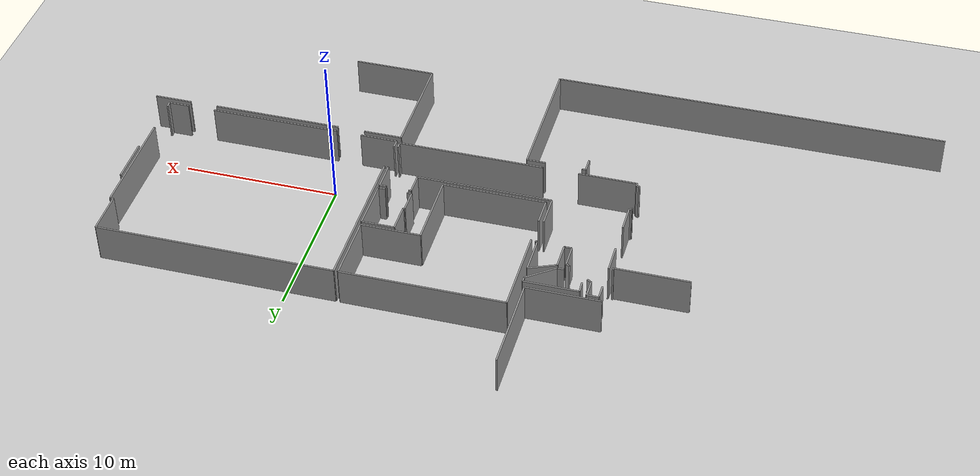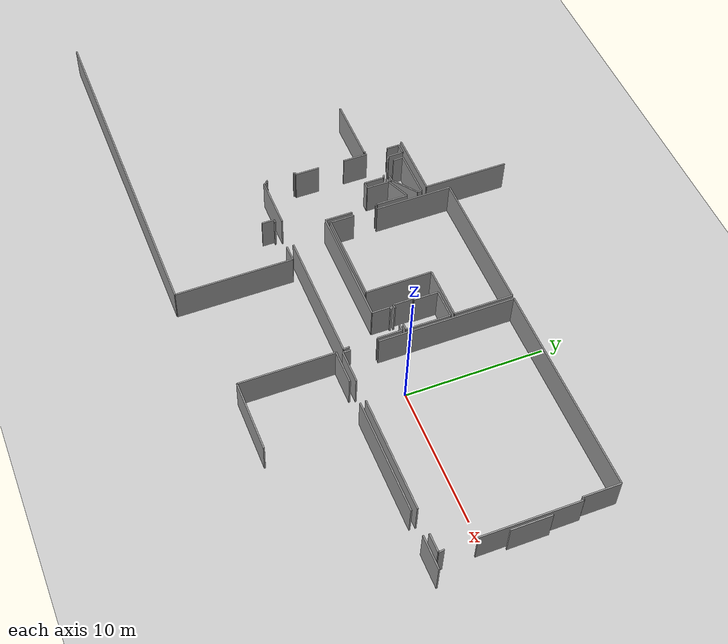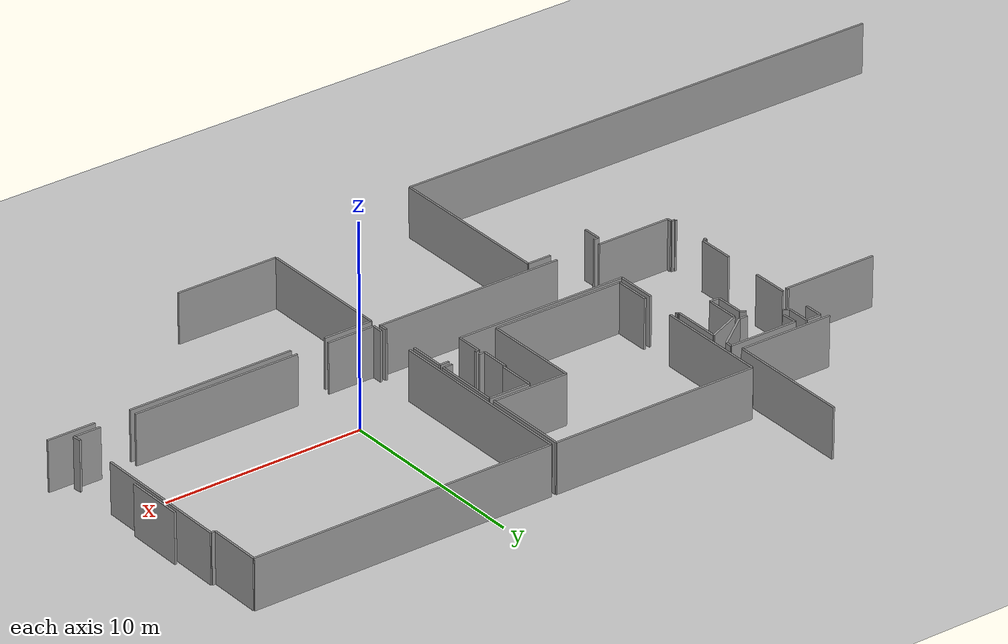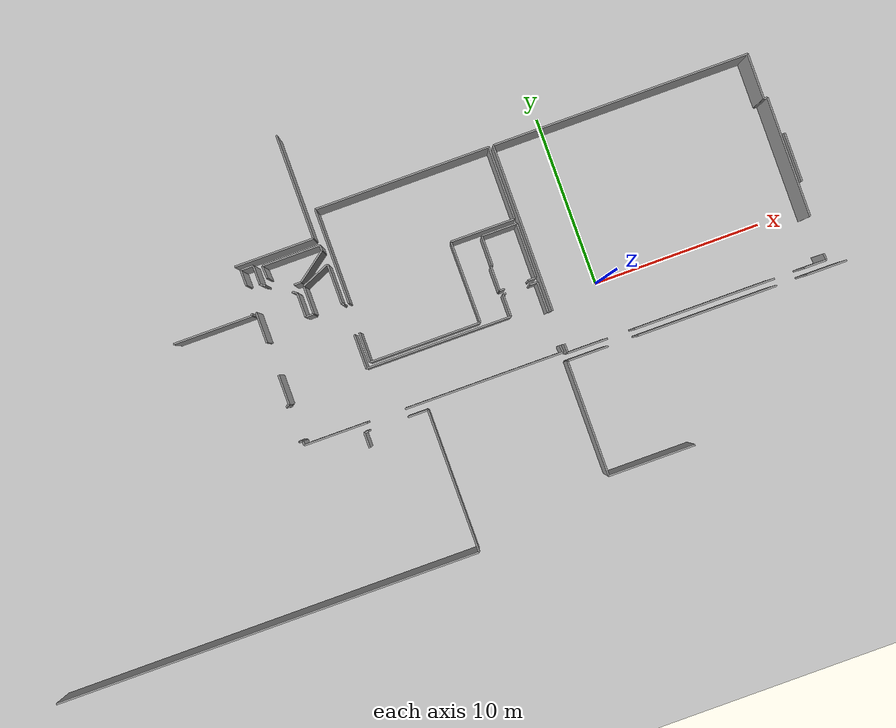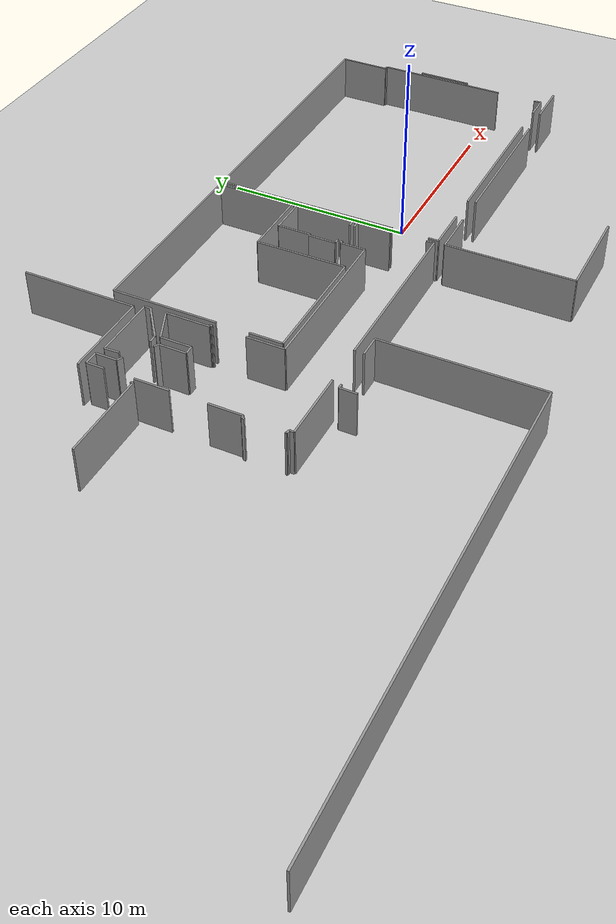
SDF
<sdf version="1.6">
 <world name="default">
  <model name="ground_plane">
   <static>1</static>
   <link name="link">
    <collision name="collision">
     <geometry><plane><normal>0 0 1</normal><size>100 100</size></plane></geometry>
     <surface><friction><ode><mu>100</mu><mu2>50</mu2></ode></friction></surface>
    </collision>
    <visual name="visual">
     <cast_shadows>0</cast_shadows>
     <geometry><plane><normal>0 0 1</normal><size>100 100</size></plane></geometry>
     <material>
      <script><uri>file://media/materials/scripts/gazebo.material</uri><name>Gazebo/Grey</name></script>
     </material>
    </visual>
   </link>
  </model>
  <model name="0510032271_A_40_1_105">
   <static>1</static>
   <link name="Wall_39">
    <collision name="Wall_39_Collision">
     <geometry><box><size>4.68838059455 0.1 2.5</size></box></geometry>
     <pose>2.34419029728 0 1.25 0 0 0</pose>
    </collision>
    <visual name="Wall_39_Visual">
     <pose>2.34419029728 0 1.25 0 0 0</pose>
     <geometry><box><size>4.68838059455 0.1 2.5</size></box></geometry>
     <material>
      <script><uri>file://media/materials/scripts/gazebo.material</uri><name>Gazebo/Grey</name></script>
      <ambient>1 1 1 1</ambient>
     </material>
    </visual>
    <pose>33.1790256658 -6.15229367114 0 0 0 3.14159265359</pose>
   </link>
   <link name="Wall_41">
    <collision name="Wall_41_Collision">
     <geometry><box><size>0.130613591937 0.1 2.5</size></box></geometry>
     <pose>0.0653067959686 0 1.25 0 0 0</pose>
    </collision>
    <visual name="Wall_41_Visual">
     <pose>0.0653067959686 0 1.25 0 0 0</pose>
     <geometry><box><size>0.130613591937 0.1 2.5</size></box></geometry>
     <material>
      <script><uri>file://media/materials/scripts/gazebo.material</uri><name>Gazebo/Grey</name></script>
      <ambient>1 1 1 1</ambient>
     </material>
    </visual>
    <pose>28.4906450712 -8.94087481912 0 0 0 -1.57079632679</pose>
   </link>
   <link name="Wall_42">
    <collision name="Wall_42_Collision">
     <geometry><box><size>4.71478256455 0.1 2.5</size></box></geometry>
     <pose>2.35739128227 0 1.25 0 0 0</pose>
    </collision>
    <visual name="Wall_42_Visual">
     <pose>2.35739128227 0 1.25 0 0 0</pose>
     <geometry><box><size>4.71478256455 0.1 2.5</size></box></geometry>
     <material>
      <script><uri>file://media/materials/scripts/gazebo.material</uri><name>Gazebo/Grey</name></script>
      <ambient>1 1 1 1</ambient>
     </material>
    </visual>
    <pose>28.4906450712 -9.07148841106 0 0 0 3.14159265359</pose>
   </link>
   <link name="Wall_46">
    <collision name="Wall_46_Collision">
     <geometry><box><size>6.15229400635 0.1 2.5</size></box></geometry>
     <pose>3.07614700318 0 1.25 0 0 0</pose>
    </collision>
    <visual name="Wall_46_Visual">
     <pose>3.07614700318 0 1.25 0 0 0</pose>
     <geometry><box><size>6.15229400635 0.1 2.5</size></box></geometry>
     <material>
      <script><uri>file://media/materials/scripts/gazebo.material</uri><name>Gazebo/Grey</name></script>
      <ambient>1 1 1 1</ambient>
     </material>
    </visual>
    <pose>33.1810565865 -0.0 0 0 0 -1.57112643469</pose>
   </link>
   <link name="Wall_61">
    <collision name="Wall_61_Collision">
     <geometry><box><size>9.41255616765 0.1 2.5</size></box></geometry>
     <pose>4.70627808383 0 1.25 0 0 0</pose>
    </collision>
    <visual name="Wall_61_Visual">
     <pose>4.70627808383 0 1.25 0 0 0</pose>
     <geometry><box><size>9.41255616765 0.1 2.5</size></box></geometry>
     <material>
      <script><uri>file://media/materials/scripts/gazebo.material</uri><name>Gazebo/Grey</name></script>
      <ambient>1 1 1 1</ambient>
     </material>
    </visual>
    <pose>44.2145413927 -16.8975146607 0 0 0 3.14159265359</pose>
   </link>
   <link name="Wall_62">
    <collision name="Wall_62_Collision">
     <geometry><box><size>3.74476403239 0.1 2.5</size></box></geometry>
     <pose>1.8723820162 0 1.25 0 0 0</pose>
    </collision>
    <visual name="Wall_62_Visual">
     <pose>1.8723820162 0 1.25 0 0 0</pose>
     <geometry><box><size>3.74476403239 0.1 2.5</size></box></geometry>
     <material>
      <script><uri>file://media/materials/scripts/gazebo.material</uri><name>Gazebo/Grey</name></script>
      <ambient>1 1 1 1</ambient>
     </material>
    </visual>
    <pose>32.5295118174 -16.8975146607 0 0 0 3.14159265359</pose>
   </link>
   <link name="Wall_63">
    <collision name="Wall_63_Collision">
     <geometry><box><size>0.243964357341 0.1 2.5</size></box></geometry>
     <pose>0.12198217867 0 1.25 0 0 0</pose>
    </collision>
    <visual name="Wall_63_Visual">
     <pose>0.12198217867 0 1.25 0 0 0</pose>
     <geometry><box><size>0.243964357341 0.1 2.5</size></box></geometry>
     <material>
      <script><uri>file://media/materials/scripts/gazebo.material</uri><name>Gazebo/Grey</name></script>
      <ambient>1 1 1 1</ambient>
     </material>
    </visual>
    <pose>28.784747785 -16.8975146607 0 0 0 1.57079632679</pose>
   </link>
   <link name="Wall_64">
    <collision name="Wall_64_Collision">
     <geometry><box><size>0.195603056536 0.1 2.5</size></box></geometry>
     <pose>0.0978015282679 0 1.25 0 0 0</pose>
    </collision>
    <visual name="Wall_64_Visual">
     <pose>0.0978015282679 0 1.25 0 0 0</pose>
     <geometry><box><size>0.195603056536 0.1 2.5</size></box></geometry>
     <material>
      <script><uri>file://media/materials/scripts/gazebo.material</uri><name>Gazebo/Grey</name></script>
      <ambient>1 1 1 1</ambient>
     </material>
    </visual>
    <pose>28.784747785 -16.6535503034 0 0 0 3.14159265359</pose>
   </link>
   <link name="Wall_65">
    <collision name="Wall_65_Collision">
     <geometry><box><size>0.0883450534386 0.1 2.5</size></box></geometry>
     <pose>0.0441725267193 0 1.25 0 0 0</pose>
    </collision>
    <visual name="Wall_65_Visual">
     <pose>0.0441725267193 0 1.25 0 0 0</pose>
     <geometry><box><size>0.0883450534386 0.1 2.5</size></box></geometry>
     <material>
      <script><uri>file://media/materials/scripts/gazebo.material</uri><name>Gazebo/Grey</name></script>
      <ambient>1 1 1 1</ambient>
     </material>
    </visual>
    <pose>28.5891447285 -16.6535503034 0 0 0 1.57079632679</pose>
   </link>
   <link name="Wall_66">
    <collision name="Wall_66_Collision">
     <geometry><box><size>0.130740524485 0.1 2.5</size></box></geometry>
     <pose>0.0653702622426 0 1.25 0 0 0</pose>
    </collision>
    <visual name="Wall_66_Visual">
     <pose>0.0653702622426 0 1.25 0 0 0</pose>
     <geometry><box><size>0.130740524485 0.1 2.5</size></box></geometry>
     <material>
      <script><uri>file://media/materials/scripts/gazebo.material</uri><name>Gazebo/Grey</name></script>
      <ambient>1 1 1 1</ambient>
     </material>
    </visual>
    <pose>28.5891447285 -14.6016856642 0 0 0 1.57079632679</pose>
   </link>
   <link name="Wall_67">
    <collision name="Wall_67_Collision">
     <geometry><box><size>0.158031022315 0.1 2.5</size></box></geometry>
     <pose>0.0790155111574 0 1.25 0 0 0</pose>
    </collision>
    <visual name="Wall_67_Visual">
     <pose>0.0790155111574 0 1.25 0 0 0</pose>
     <geometry><box><size>0.158031022315 0.1 2.5</size></box></geometry>
     <material>
      <script><uri>file://media/materials/scripts/gazebo.material</uri><name>Gazebo/Grey</name></script>
      <ambient>1 1 1 1</ambient>
     </material>
    </visual>
    <pose>28.5891447285 -14.4709451398 0 0 0 0.0</pose>
   </link>
   <link name="Wall_68">
    <collision name="Wall_68_Collision">
     <geometry><box><size>1.77070904521 0.1 2.5</size></box></geometry>
     <pose>0.885354522607 0 1.25 0 0 0</pose>
    </collision>
    <visual name="Wall_68_Visual">
     <pose>0.885354522607 0 1.25 0 0 0</pose>
     <geometry><box><size>1.77070904521 0.1 2.5</size></box></geometry>
     <material>
      <script><uri>file://media/materials/scripts/gazebo.material</uri><name>Gazebo/Grey</name></script>
      <ambient>1 1 1 1</ambient>
     </material>
    </visual>
    <pose>28.7471757508 -14.4709451398 0 0 0 1.57079632679</pose>
   </link>
   <link name="Wall_69">
    <collision name="Wall_69_Collision">
     <geometry><box><size>1.8108197304 0.1 2.5</size></box></geometry>
     <pose>0.905409865198 0 1.25 0 0 0</pose>
    </collision>
    <visual name="Wall_69_Visual">
     <pose>0.905409865198 0 1.25 0 0 0</pose>
     <geometry><box><size>1.8108197304 0.1 2.5</size></box></geometry>
     <material>
      <script><uri>file://media/materials/scripts/gazebo.material</uri><name>Gazebo/Grey</name></script>
      <ambient>1 1 1 1</ambient>
     </material>
    </visual>
    <pose>28.7471757508 -10.7666725902 0 0 0 1.57079632679</pose>
   </link>
   <link name="Wall_70">
    <collision name="Wall_70_Collision">
     <geometry><box><size>0.921657231347 0.1 2.5</size></box></geometry>
     <pose>0.460828615674 0 1.25 0 0 0</pose>
    </collision>
    <visual name="Wall_70_Visual">
     <pose>0.460828615674 0 1.25 0 0 0</pose>
     <geometry><box><size>0.921657231347 0.1 2.5</size></box></geometry>
     <material>
      <script><uri>file://media/materials/scripts/gazebo.material</uri><name>Gazebo/Grey</name></script>
      <ambient>1 1 1 1</ambient>
     </material>
    </visual>
    <pose>28.7471757508 -7.36602269554 0 0 0 1.57079632679</pose>
   </link>
   <link name="Wall_71">
    <collision name="Wall_71_Collision">
     <geometry><box><size>0.740270620192 0.1 2.5</size></box></geometry>
     <pose>0.370135310096 0 1.25 0 0 0</pose>
    </collision>
    <visual name="Wall_71_Visual">
     <pose>0.370135310096 0 1.25 0 0 0</pose>
     <geometry><box><size>0.740270620192 0.1 2.5</size></box></geometry>
     <material>
      <script><uri>file://media/materials/scripts/gazebo.material</uri><name>Gazebo/Grey</name></script>
      <ambient>1 1 1 1</ambient>
     </material>
    </visual>
    <pose>28.7471757508 -6.44436546419 0 0 0 0.0</pose>
   </link>
   <link name="Wall_72">
    <collision name="Wall_72_Collision">
     <geometry><box><size>1.11764108553 0.1 2.5</size></box></geometry>
     <pose>0.558820542764 0 1.25 0 0 0</pose>
    </collision>
    <visual name="Wall_72_Visual">
     <pose>0.558820542764 0 1.25 0 0 0</pose>
     <geometry><box><size>1.11764108553 0.1 2.5</size></box></geometry>
     <material>
      <script><uri>file://media/materials/scripts/gazebo.material</uri><name>Gazebo/Grey</name></script>
      <ambient>1 1 1 1</ambient>
     </material>
    </visual>
    <pose>29.487446371 -6.44436546419 0 0 0 -1.57079632679</pose>
   </link>
   <link name="Wall_73">
    <collision name="Wall_73_Collision">
     <geometry><box><size>0.31622973972 0.1 2.5</size></box></geometry>
     <pose>0.15811486986 0 1.25 0 0 0</pose>
    </collision>
    <visual name="Wall_73_Visual">
     <pose>0.15811486986 0 1.25 0 0 0</pose>
     <geometry><box><size>0.31622973972 0.1 2.5</size></box></geometry>
     <material>
      <script><uri>file://media/materials/scripts/gazebo.material</uri><name>Gazebo/Grey</name></script>
      <ambient>1 1 1 1</ambient>
     </material>
    </visual>
    <pose>29.487446371 -7.56200654972 0 0 0 -0.556046455298</pose>
   </link>
   <link name="Wall_74">
    <collision name="Wall_74_Collision">
     <geometry><box><size>0.283159459863 0.1 2.5</size></box></geometry>
     <pose>0.141579729932 0 1.25 0 0 0</pose>
    </collision>
    <visual name="Wall_74_Visual">
     <pose>0.141579729932 0 1.25 0 0 0</pose>
     <geometry><box><size>0.283159459863 0.1 2.5</size></box></geometry>
     <material>
      <script><uri>file://media/materials/scripts/gazebo.material</uri><name>Gazebo/Grey</name></script>
      <ambient>1 1 1 1</ambient>
     </material>
    </visual>
    <pose>31.0510014978 -8.56578913965 0 0 0 -0.595338043279</pose>
   </link>
   <link name="Wall_75">
    <collision name="Wall_75_Collision">
     <geometry><box><size>1.41364778757 0.1 2.5</size></box></geometry>
     <pose>0.706823893783 0 1.25 0 0 0</pose>
    </collision>
    <visual name="Wall_75_Visual">
     <pose>0.706823893783 0 1.25 0 0 0</pose>
     <geometry><box><size>1.41364778757 0.1 2.5</size></box></geometry>
     <material>
      <script><uri>file://media/materials/scripts/gazebo.material</uri><name>Gazebo/Grey</name></script>
      <ambient>1 1 1 1</ambient>
     </material>
    </visual>
    <pose>31.285445914 -8.72458175725 0 0 0 -1.57079632679</pose>
   </link>
   <link name="Wall_76">
    <collision name="Wall_76_Collision">
     <geometry><box><size>0.482724480211 0.1 2.5</size></box></geometry>
     <pose>0.241362240106 0 1.25 0 0 0</pose>
    </collision>
    <visual name="Wall_76_Visual">
     <pose>0.241362240106 0 1.25 0 0 0</pose>
     <geometry><box><size>0.482724480211 0.1 2.5</size></box></geometry>
     <material>
      <script><uri>file://media/materials/scripts/gazebo.material</uri><name>Gazebo/Grey</name></script>
      <ambient>1 1 1 1</ambient>
     </material>
    </visual>
    <pose>31.285445914 -10.1382295448 0 0 0 0.0</pose>
   </link>
   <link name="Wall_77">
    <collision name="Wall_77_Collision">
     <geometry><box><size>1.64885379909 0.1 2.5</size></box></geometry>
     <pose>0.824426899546 0 1.25 0 0 0</pose>
    </collision>
    <visual name="Wall_77_Visual">
     <pose>0.824426899546 0 1.25 0 0 0</pose>
     <geometry><box><size>1.64885379909 0.1 2.5</size></box></geometry>
     <material>
      <script><uri>file://media/materials/scripts/gazebo.material</uri><name>Gazebo/Grey</name></script>
      <ambient>1 1 1 1</ambient>
     </material>
    </visual>
    <pose>31.7681703943 -10.1382295448 0 0 0 1.57079632679</pose>
   </link>
   <link name="Wall_78">
    <collision name="Wall_78_Collision">
     <geometry><box><size>1.81432663881 0.1 2.5</size></box></geometry>
     <pose>0.907163319403 0 1.25 0 0 0</pose>
    </collision>
    <visual name="Wall_78_Visual">
     <pose>0.907163319403 0 1.25 0 0 0</pose>
     <geometry><box><size>1.81432663881 0.1 2.5</size></box></geometry>
     <material>
      <script><uri>file://media/materials/scripts/gazebo.material</uri><name>Gazebo/Grey</name></script>
      <ambient>1 1 1 1</ambient>
     </material>
    </visual>
    <pose>31.7681703943 -8.48937574573 0 0 0 0.404166063675</pose>
   </link>
   <link name="Wall_79">
    <collision name="Wall_79_Collision">
     <geometry><box><size>2.34875986901 0.1 2.5</size></box></geometry>
     <pose>1.1743799345 0 1.25 0 0 0</pose>
    </collision>
    <visual name="Wall_79_Visual">
     <pose>1.1743799345 0 1.25 0 0 0</pose>
     <geometry><box><size>2.34875986901 0.1 2.5</size></box></geometry>
     <material>
      <script><uri>file://media/materials/scripts/gazebo.material</uri><name>Gazebo/Grey</name></script>
      <ambient>1 1 1 1</ambient>
     </material>
    </visual>
    <pose>33.4363179406 -7.77588789317 0 0 0 -1.57079632679</pose>
   </link>
   <link name="Wall_80">
    <collision name="Wall_80_Collision">
     <geometry><box><size>0.0789520448834 0.1 2.5</size></box></geometry>
     <pose>0.0394760224417 0 1.25 0 0 0</pose>
    </collision>
    <visual name="Wall_80_Visual">
     <pose>0.0394760224417 0 1.25 0 0 0</pose>
     <geometry><box><size>0.0789520448834 0.1 2.5</size></box></geometry>
     <material>
      <script><uri>file://media/materials/scripts/gazebo.material</uri><name>Gazebo/Grey</name></script>
      <ambient>1 1 1 1</ambient>
     </material>
    </visual>
    <pose>33.4363179406 -10.1246477622 0 0 0 0.0</pose>
   </link>
   <link name="Wall_81">
    <collision name="Wall_81_Collision">
     <geometry><box><size>0.115254753624 0.1 2.5</size></box></geometry>
     <pose>0.057627376812 0 1.25 0 0 0</pose>
    </collision>
    <visual name="Wall_81_Visual">
     <pose>0.057627376812 0 1.25 0 0 0</pose>
     <geometry><box><size>0.115254753624 0.1 2.5</size></box></geometry>
     <material>
      <script><uri>file://media/materials/scripts/gazebo.material</uri><name>Gazebo/Grey</name></script>
      <ambient>1 1 1 1</ambient>
     </material>
    </visual>
    <pose>33.5152699855 -10.1246477622 0 0 0 -1.57079632679</pose>
   </link>
   <link name="Wall_82">
    <collision name="Wall_82_Collision">
     <geometry><box><size>2.01936990683 0.1 2.5</size></box></geometry>
     <pose>1.00968495342 0 1.25 0 0 0</pose>
    </collision>
    <visual name="Wall_82_Visual">
     <pose>1.00968495342 0 1.25 0 0 0</pose>
     <geometry><box><size>2.01936990683 0.1 2.5</size></box></geometry>
     <material>
      <script><uri>file://media/materials/scripts/gazebo.material</uri><name>Gazebo/Grey</name></script>
      <ambient>1 1 1 1</ambient>
     </material>
    </visual>
    <pose>33.5152699855 -12.0014724176 0 0 0 -1.57079632679</pose>
   </link>
   <link name="Wall_83">
    <collision name="Wall_83_Collision">
     <geometry><box><size>8.62493970704 0.1 2.5</size></box></geometry>
     <pose>4.31246985352 0 1.25 0 0 0</pose>
    </collision>
    <visual name="Wall_83_Visual">
     <pose>4.31246985352 0 1.25 0 0 0</pose>
     <geometry><box><size>8.62493970704 0.1 2.5</size></box></geometry>
     <material>
      <script><uri>file://media/materials/scripts/gazebo.material</uri><name>Gazebo/Grey</name></script>
      <ambient>1 1 1 1</ambient>
     </material>
    </visual>
    <pose>33.5152699855 -14.0208423244 0 0 0 0.0</pose>
   </link>
   <link name="Wall_84">
    <collision name="Wall_84_Collision">
     <geometry><box><size>1.31844837653 0.1 2.5</size></box></geometry>
     <pose>0.659224188266 0 1.25 0 0 0</pose>
    </collision>
    <visual name="Wall_84_Visual">
     <pose>0.659224188266 0 1.25 0 0 0</pose>
     <geometry><box><size>1.31844837653 0.1 2.5</size></box></geometry>
     <material>
      <script><uri>file://media/materials/scripts/gazebo.material</uri><name>Gazebo/Grey</name></script>
      <ambient>1 1 1 1</ambient>
     </material>
    </visual>
    <pose>42.1402096926 -14.0208423244 0 0 0 1.57079632679</pose>
   </link>
   <link name="Wall_85">
    <collision name="Wall_85_Collision">
     <geometry><box><size>0.174913051205 0.1 2.5</size></box></geometry>
     <pose>0.0874565256023 0 1.25 0 0 0</pose>
    </collision>
    <visual name="Wall_85_Visual">
     <pose>0.0874565256023 0 1.25 0 0 0</pose>
     <geometry><box><size>0.174913051205 0.1 2.5</size></box></geometry>
     <material>
      <script><uri>file://media/materials/scripts/gazebo.material</uri><name>Gazebo/Grey</name></script>
      <ambient>1 1 1 1</ambient>
     </material>
    </visual>
    <pose>42.1402096926 -12.7023939479 0 0 0 0.0</pose>
   </link>
   <link name="Wall_86">
    <collision name="Wall_86_Collision">
     <geometry><box><size>0.461019014496 0.1 2.5</size></box></geometry>
     <pose>0.230509507248 0 1.25 0 0 0</pose>
    </collision>
    <visual name="Wall_86_Visual">
     <pose>0.230509507248 0 1.25 0 0 0</pose>
     <geometry><box><size>0.461019014496 0.1 2.5</size></box></geometry>
     <material>
      <script><uri>file://media/materials/scripts/gazebo.material</uri><name>Gazebo/Grey</name></script>
      <ambient>1 1 1 1</ambient>
     </material>
    </visual>
    <pose>43.7201391181 -12.7023939479 0 0 0 0.0</pose>
   </link>
   <link name="Wall_87">
    <collision name="Wall_87_Collision">
     <geometry><box><size>1.79596862227 0.1 2.5</size></box></geometry>
     <pose>0.897984311137 0 1.25 0 0 0</pose>
    </collision>
    <visual name="Wall_87_Visual">
     <pose>0.897984311137 0 1.25 0 0 0</pose>
     <geometry><box><size>1.79596862227 0.1 2.5</size></box></geometry>
     <material>
      <script><uri>file://media/materials/scripts/gazebo.material</uri><name>Gazebo/Grey</name></script>
      <ambient>1 1 1 1</ambient>
     </material>
    </visual>
    <pose>44.1811581326 -12.7023939479 0 0 0 -1.57079632679</pose>
   </link>
   <link name="Wall_88">
    <collision name="Wall_88_Collision">
     <geometry><box><size>0.42691207108 0.1 2.5</size></box></geometry>
     <pose>0.21345603554 0 1.25 0 0 0</pose>
    </collision>
    <visual name="Wall_88_Visual">
     <pose>0.21345603554 0 1.25 0 0 0</pose>
     <geometry><box><size>0.42691207108 0.1 2.5</size></box></geometry>
     <material>
      <script><uri>file://media/materials/scripts/gazebo.material</uri><name>Gazebo/Grey</name></script>
      <ambient>1 1 1 1</ambient>
     </material>
    </visual>
    <pose>44.1811581326 -16.4719098271 0 0 0 -1.49251937418</pose>
   </link>
   <link name="Wall_94">
    <collision name="Wall_94_Collision">
     <geometry><box><size>0.422812317534 0.1 2.5</size></box></geometry>
     <pose>0.211406158767 0 1.25 0 0 0</pose>
    </collision>
    <visual name="Wall_94_Visual">
     <pose>0.211406158767 0 1.25 0 0 0</pose>
     <geometry><box><size>0.422812317534 0.1 2.5</size></box></geometry>
     <material>
      <script><uri>file://media/materials/scripts/gazebo.material</uri><name>Gazebo/Grey</name></script>
      <ambient>1 1 1 1</ambient>
     </material>
    </visual>
    <pose>31.7066081085 -8.22865629205 0 0 0 3.14159265359</pose>
   </link>
   <link name="Wall_95">
    <collision name="Wall_95_Collision">
     <geometry><box><size>0.759757668975 0.1 2.5</size></box></geometry>
     <pose>0.379878834488 0 1.25 0 0 0</pose>
    </collision>
    <visual name="Wall_95_Visual">
     <pose>0.379878834488 0 1.25 0 0 0</pose>
     <geometry><box><size>0.759757668975 0.1 2.5</size></box></geometry>
     <material>
      <script><uri>file://media/materials/scripts/gazebo.material</uri><name>Gazebo/Grey</name></script>
      <ambient>1 1 1 1</ambient>
     </material>
    </visual>
    <pose>29.9955573608 -7.3849356452 0 0 0 1.62093826999</pose>
   </link>
   <link name="Wall_96">
    <collision name="Wall_96_Collision">
     <geometry><box><size>3.44520321901 0.1 2.5</size></box></geometry>
     <pose>1.7226016095 0 1.25 0 0 0</pose>
    </collision>
    <visual name="Wall_96_Visual">
     <pose>1.7226016095 0 1.25 0 0 0</pose>
     <geometry><box><size>3.44520321901 0.1 2.5</size></box></geometry>
     <material>
      <script><uri>file://media/materials/scripts/gazebo.material</uri><name>Gazebo/Grey</name></script>
      <ambient>1 1 1 1</ambient>
     </material>
    </visual>
    <pose>29.9574775964 -6.62613287299 0 0 0 0.0</pose>
   </link>
   <link name="Wall_97">
    <collision name="Wall_97_Collision">
     <geometry><box><size>0.324566525348 0.1 2.5</size></box></geometry>
     <pose>0.162283262674 0 1.25 0 0 0</pose>
    </collision>
    <visual name="Wall_97_Visual">
     <pose>0.162283262674 0 1.25 0 0 0</pose>
     <geometry><box><size>0.324566525348 0.1 2.5</size></box></geometry>
     <material>
      <script><uri>file://media/materials/scripts/gazebo.material</uri><name>Gazebo/Grey</name></script>
      <ambient>1 1 1 1</ambient>
     </material>
    </visual>
    <pose>33.4026808154 -6.62613287299 0 0 0 -1.57079632679</pose>
   </link>
   <link name="Wall_98">
    <collision name="Wall_98_Collision">
     <geometry><box><size>2.12363755134 0.1 2.5</size></box></geometry>
     <pose>1.06181877567 0 1.25 0 0 0</pose>
    </collision>
    <visual name="Wall_98_Visual">
     <pose>1.06181877567 0 1.25 0 0 0</pose>
     <geometry><box><size>2.12363755134 0.1 2.5</size></box></geometry>
     <material>
      <script><uri>file://media/materials/scripts/gazebo.material</uri><name>Gazebo/Grey</name></script>
      <ambient>1 1 1 1</ambient>
     </material>
    </visual>
    <pose>33.4026808154 -6.95069939834 0 0 0 -2.49586805111</pose>
   </link>
   <link name="Wall_99">
    <collision name="Wall_99_Collision">
     <geometry><box><size>25.2075347161 0.1 2.5</size></box></geometry>
     <pose>12.603767358 0 1.25 0 0 0</pose>
    </collision>
    <visual name="Wall_99_Visual">
     <pose>12.603767358 0 1.25 0 0 0</pose>
     <geometry><box><size>25.2075347161 0.1 2.5</size></box></geometry>
     <material>
      <script><uri>file://media/materials/scripts/gazebo.material</uri><name>Gazebo/Grey</name></script>
      <ambient>1 1 1 1</ambient>
     </material>
    </visual>
    <pose>35.9912162677 -25.857429362 0 0 0 3.14159265359</pose>
   </link>
   <link name="Wall_108">
    <collision name="Wall_108_Collision">
     <geometry><box><size>0.905409865198 0.1 2.5</size></box></geometry>
     <pose>0.452704932599 0 1.25 0 0 0</pose>
    </collision>
    <visual name="Wall_108_Visual">
     <pose>0.452704932599 0 1.25 0 0 0</pose>
     <geometry><box><size>0.905409865198 0.1 2.5</size></box></geometry>
     <material>
      <script><uri>file://media/materials/scripts/gazebo.material</uri><name>Gazebo/Grey</name></script>
      <ambient>1 1 1 1</ambient>
     </material>
    </visual>
    <pose>32.1862862075 -18.2847604783 0 0 0 1.57079632679</pose>
   </link>
   <link name="Wall_109">
    <collision name="Wall_109_Collision">
     <geometry><box><size>0.246122210657 0.1 2.5</size></box></geometry>
     <pose>0.123061105329 0 1.25 0 0 0</pose>
    </collision>
    <visual name="Wall_109_Visual">
     <pose>0.123061105329 0 1.25 0 0 0</pose>
     <geometry><box><size>0.246122210657 0.1 2.5</size></box></geometry>
     <material>
      <script><uri>file://media/materials/scripts/gazebo.material</uri><name>Gazebo/Grey</name></script>
      <ambient>1 1 1 1</ambient>
     </material>
    </visual>
    <pose>32.1862862075 -17.3793506131 0 0 0 0.0</pose>
   </link>
   <link name="Wall_110">
    <collision name="Wall_110_Collision">
     <geometry><box><size>1.19265822142 0.1 2.5</size></box></geometry>
     <pose>0.596329110711 0 1.25 0 0 0</pose>
    </collision>
    <visual name="Wall_110_Visual">
     <pose>0.596329110711 0 1.25 0 0 0</pose>
     <geometry><box><size>1.19265822142 0.1 2.5</size></box></geometry>
     <material>
      <script><uri>file://media/materials/scripts/gazebo.material</uri><name>Gazebo/Grey</name></script>
      <ambient>1 1 1 1</ambient>
     </material>
    </visual>
    <pose>34.7863725216 -17.3793506131 0 0 0 0.0</pose>
   </link>
   <link name="Wall_111">
    <collision name="Wall_111_Collision">
     <geometry><box><size>8.47808750606 0.1 2.5</size></box></geometry>
     <pose>4.23904375303 0 1.25 0 0 0</pose>
    </collision>
    <visual name="Wall_111_Visual">
     <pose>4.23904375303 0 1.25 0 0 0</pose>
     <geometry><box><size>8.47808750606 0.1 2.5</size></box></geometry>
     <material>
      <script><uri>file://media/materials/scripts/gazebo.material</uri><name>Gazebo/Grey</name></script>
      <ambient>1 1 1 1</ambient>
     </material>
    </visual>
    <pose>35.9790307431 -17.3793506131 0 0 0 -1.5693590299</pose>
   </link>
   <link name="Wall_112">
    <collision name="Wall_112_Collision">
     <geometry><box><size>6.58411819959 0.1 2.5</size></box></geometry>
     <pose>3.29205909979 0 1.25 0 0 0</pose>
    </collision>
    <visual name="Wall_112_Visual">
     <pose>3.29205909979 0 1.25 0 0 0</pose>
     <geometry><box><size>6.58411819959 0.1 2.5</size></box></geometry>
     <material>
      <script><uri>file://media/materials/scripts/gazebo.material</uri><name>Gazebo/Grey</name></script>
      <ambient>1 1 1 1</ambient>
     </material>
    </visual>
    <pose>40.4125307811 -13.7582188825 0 0 0 3.14159265359</pose>
   </link>
   <link name="Wall_113">
    <collision name="Wall_113_Collision">
     <geometry><box><size>1.76613947348 0.1 2.5</size></box></geometry>
     <pose>0.883069736742 0 1.25 0 0 0</pose>
    </collision>
    <visual name="Wall_113_Visual">
     <pose>0.883069736742 0 1.25 0 0 0</pose>
     <geometry><box><size>1.76613947348 0.1 2.5</size></box></geometry>
     <material>
      <script><uri>file://media/materials/scripts/gazebo.material</uri><name>Gazebo/Grey</name></script>
      <ambient>1 1 1 1</ambient>
     </material>
    </visual>
    <pose>33.8284125816 -13.7582188825 0 0 0 1.57079632679</pose>
   </link>
   <link name="Wall_114">
    <collision name="Wall_114_Collision">
     <geometry><box><size>5.60153334518 0.1 2.5</size></box></geometry>
     <pose>2.80076667259 0 1.25 0 0 0</pose>
    </collision>
    <visual name="Wall_114_Visual">
     <pose>2.80076667259 0 1.25 0 0 0</pose>
     <geometry><box><size>5.60153334518 0.1 2.5</size></box></geometry>
     <material>
      <script><uri>file://media/materials/scripts/gazebo.material</uri><name>Gazebo/Grey</name></script>
      <ambient>1 1 1 1</ambient>
     </material>
    </visual>
    <pose>33.8284125816 -10.247137671 0 0 0 1.57079632679</pose>
   </link>
   <link name="Wall_115">
    <collision name="Wall_115_Collision">
     <geometry><box><size>10.355284202 0.1 2.5</size></box></geometry>
     <pose>5.17764210099 0 1.25 0 0 0</pose>
    </collision>
    <visual name="Wall_115_Visual">
     <pose>5.17764210099 0 1.25 0 0 0</pose>
     <geometry><box><size>10.355284202 0.1 2.5</size></box></geometry>
     <material>
      <script><uri>file://media/materials/scripts/gazebo.material</uri><name>Gazebo/Grey</name></script>
      <ambient>1 1 1 1</ambient>
     </material>
    </visual>
    <pose>33.8284125816 -4.64560432586 0 0 0 0.0</pose>
   </link>
   <link name="Wall_116">
    <collision name="Wall_116_Collision">
     <geometry><box><size>4.28473509177 0.1 2.5</size></box></geometry>
     <pose>2.14236754589 0 1.25 0 0 0</pose>
    </collision>
    <visual name="Wall_116_Visual">
     <pose>2.14236754589 0 1.25 0 0 0</pose>
     <geometry><box><size>4.28473509177 0.1 2.5</size></box></geometry>
     <material>
      <script><uri>file://media/materials/scripts/gazebo.material</uri><name>Gazebo/Grey</name></script>
      <ambient>1 1 1 1</ambient>
     </material>
    </visual>
    <pose>44.1836967835 -4.64560432586 0 0 0 -1.57079632679</pose>
   </link>
   <link name="Wall_117">
    <collision name="Wall_117_Collision">
     <geometry><box><size>3.79997969079 0.1 2.5</size></box></geometry>
     <pose>1.8999898454 0 1.25 0 0 0</pose>
    </collision>
    <visual name="Wall_117_Visual">
     <pose>1.8999898454 0 1.25 0 0 0</pose>
     <geometry><box><size>3.79997969079 0.1 2.5</size></box></geometry>
     <material>
      <script><uri>file://media/materials/scripts/gazebo.material</uri><name>Gazebo/Grey</name></script>
      <ambient>1 1 1 1</ambient>
     </material>
    </visual>
    <pose>44.1836967835 -8.93033941763 0 0 0 3.14159265359</pose>
   </link>
   <link name="Wall_118">
    <collision name="Wall_118_Collision">
     <geometry><box><size>4.82796544683 0.1 2.5</size></box></geometry>
     <pose>2.41398272341 0 1.25 0 0 0</pose>
    </collision>
    <visual name="Wall_118_Visual">
     <pose>2.41398272341 0 1.25 0 0 0</pose>
     <geometry><box><size>4.82796544683 0.1 2.5</size></box></geometry>
     <material>
      <script><uri>file://media/materials/scripts/gazebo.material</uri><name>Gazebo/Grey</name></script>
      <ambient>1 1 1 1</ambient>
     </material>
    </visual>
    <pose>40.3837170927 -8.93033941763 0 0 0 -1.56482821046</pose>
   </link>
   <link name="Wall_119">
    <collision name="Wall_119_Collision">
     <geometry><box><size>0.459115026275 0.1 2.5</size></box></geometry>
     <pose>0.229557513138 0 1.25 0 0 0</pose>
    </collision>
    <visual name="Wall_119_Visual">
     <pose>0.229557513138 0 1.25 0 0 0</pose>
     <geometry><box><size>0.459115026275 0.1 2.5</size></box></geometry>
     <material>
      <script><uri>file://media/materials/scripts/gazebo.material</uri><name>Gazebo/Grey</name></script>
      <ambient>1 1 1 1</ambient>
     </material>
    </visual>
    <pose>44.1979132289 -12.4407859663 0 0 0 3.14159265359</pose>
   </link>
   <link name="Wall_120">
    <collision name="Wall_120_Collision">
     <geometry><box><size>0.297529892615 0.1 2.5</size></box></geometry>
     <pose>0.148764946308 0 1.25 0 0 0</pose>
    </collision>
    <visual name="Wall_120_Visual">
     <pose>0.148764946308 0 1.25 0 0 0</pose>
     <geometry><box><size>0.297529892615 0.1 2.5</size></box></geometry>
     <material>
      <script><uri>file://media/materials/scripts/gazebo.material</uri><name>Gazebo/Grey</name></script>
      <ambient>1 1 1 1</ambient>
     </material>
    </visual>
    <pose>42.3257850778 -12.4407859663 0 0 0 3.14159265359</pose>
   </link>
   <link name="Wall_121">
    <collision name="Wall_121_Collision">
     <geometry><box><size>1.4533776751 0.1 2.5</size></box></geometry>
     <pose>0.726688837552 0 1.25 0 0 0</pose>
    </collision>
    <visual name="Wall_121_Visual">
     <pose>0.726688837552 0 1.25 0 0 0</pose>
     <geometry><box><size>1.4533776751 0.1 2.5</size></box></geometry>
     <material>
      <script><uri>file://media/materials/scripts/gazebo.material</uri><name>Gazebo/Grey</name></script>
      <ambient>1 1 1 1</ambient>
     </material>
    </visual>
    <pose>42.0282551852 -12.4407859663 0 0 0 1.57079632679</pose>
   </link>
   <link name="Wall_122">
    <collision name="Wall_122_Collision">
     <geometry><box><size>0.101672970983 0.1 2.5</size></box></geometry>
     <pose>0.0508364854916 0 1.25 0 0 0</pose>
    </collision>
    <visual name="Wall_122_Visual">
     <pose>0.0508364854916 0 1.25 0 0 0</pose>
     <geometry><box><size>0.101672970983 0.1 2.5</size></box></geometry>
     <material>
      <script><uri>file://media/materials/scripts/gazebo.material</uri><name>Gazebo/Grey</name></script>
      <ambient>1 1 1 1</ambient>
     </material>
    </visual>
    <pose>42.0282551852 -10.9874082912 0 0 0 0.0</pose>
   </link>
   <link name="Wall_123">
    <collision name="Wall_123_Collision">
     <geometry><box><size>1.778071133 0.1 2.5</size></box></geometry>
     <pose>0.8890355665 0 1.25 0 0 0</pose>
    </collision>
    <visual name="Wall_123_Visual">
     <pose>0.8890355665 0 1.25 0 0 0</pose>
     <geometry><box><size>1.778071133 0.1 2.5</size></box></geometry>
     <material>
      <script><uri>file://media/materials/scripts/gazebo.material</uri><name>Gazebo/Grey</name></script>
      <ambient>1 1 1 1</ambient>
     </material>
    </visual>
    <pose>42.1299281562 -10.9874082912 0 0 0 1.57079632679</pose>
   </link>
   <link name="Wall_124">
    <collision name="Wall_124_Collision">
     <geometry><box><size>2.08283618085 0.1 2.5</size></box></geometry>
     <pose>1.04141809043 0 1.25 0 0 0</pose>
    </collision>
    <visual name="Wall_124_Visual">
     <pose>1.04141809043 0 1.25 0 0 0</pose>
     <geometry><box><size>2.08283618085 0.1 2.5</size></box></geometry>
     <material>
      <script><uri>file://media/materials/scripts/gazebo.material</uri><name>Gazebo/Grey</name></script>
      <ambient>1 1 1 1</ambient>
     </material>
    </visual>
    <pose>42.1299281562 -9.20933715823 0 0 0 0.0</pose>
   </link>
   <link name="Wall_125">
    <collision name="Wall_125_Collision">
     <geometry><box><size>3.23148293432 0.1 2.5</size></box></geometry>
     <pose>1.61574146716 0 1.25 0 0 0</pose>
    </collision>
    <visual name="Wall_125_Visual">
     <pose>1.61574146716 0 1.25 0 0 0</pose>
     <geometry><box><size>3.23148293432 0.1 2.5</size></box></geometry>
     <material>
      <script><uri>file://media/materials/scripts/gazebo.material</uri><name>Gazebo/Grey</name></script>
      <ambient>1 1 1 1</ambient>
     </material>
    </visual>
    <pose>44.212764337 -9.20933715823 0 0 0 -1.57539209929</pose>
   </link>
   <link name="Wall_126">
    <collision name="Wall_126_Collision">
     <geometry><box><size>1.32885684547 0.1 2.5</size></box></geometry>
     <pose>0.664428422736 0 1.25 0 0 0</pose>
    </collision>
    <visual name="Wall_126_Visual">
     <pose>0.664428422736 0 1.25 0 0 0</pose>
     <geometry><box><size>1.32885684547 0.1 2.5</size></box></geometry>
     <material>
      <script><uri>file://media/materials/scripts/gazebo.material</uri><name>Gazebo/Grey</name></script>
      <ambient>1 1 1 1</ambient>
     </material>
    </visual>
    <pose>59.8723058567 -17.0260973319 0 0 0 3.14159265359</pose>
   </link>
   <link name="Wall_127">
    <collision name="Wall_127_Collision">
     <geometry><box><size>8.34835368485 0.1 2.5</size></box></geometry>
     <pose>4.17417684243 0 1.25 0 0 0</pose>
    </collision>
    <visual name="Wall_127_Visual">
     <pose>4.17417684243 0 1.25 0 0 0</pose>
     <geometry><box><size>8.34835368485 0.1 2.5</size></box></geometry>
     <material>
      <script><uri>file://media/materials/scripts/gazebo.material</uri><name>Gazebo/Grey</name></script>
      <ambient>1 1 1 1</ambient>
     </material>
    </visual>
    <pose>56.7776903354 -17.0260973319 0 0 0 3.14159265359</pose>
   </link>
   <link name="Wall_128">
    <collision name="Wall_128_Collision">
     <geometry><box><size>2.3817623315 0.1 2.5</size></box></geometry>
     <pose>1.19088116575 0 1.25 0 0 0</pose>
    </collision>
    <visual name="Wall_128_Visual">
     <pose>1.19088116575 0 1.25 0 0 0</pose>
     <geometry><box><size>2.3817623315 0.1 2.5</size></box></geometry>
     <material>
      <script><uri>file://media/materials/scripts/gazebo.material</uri><name>Gazebo/Grey</name></script>
      <ambient>1 1 1 1</ambient>
     </material>
    </visual>
    <pose>46.8280825569 -17.0260973319 0 0 0 3.14159265359</pose>
   </link>
   <link name="Wall_129">
    <collision name="Wall_129_Collision">
     <geometry><box><size>0.546190754233 0.1 2.5</size></box></geometry>
     <pose>0.273095377117 0 1.25 0 0 0</pose>
    </collision>
    <visual name="Wall_129_Visual">
     <pose>0.273095377117 0 1.25 0 0 0</pose>
     <geometry><box><size>0.546190754233 0.1 2.5</size></box></geometry>
     <material>
      <script><uri>file://media/materials/scripts/gazebo.material</uri><name>Gazebo/Grey</name></script>
      <ambient>1 1 1 1</ambient>
     </material>
    </visual>
    <pose>44.4463202254 -17.0260973319 0 0 0 1.57079632679</pose>
   </link>
   <link name="Wall_130">
    <collision name="Wall_130_Collision">
     <geometry><box><size>9.84945799802 0.1 2.5</size></box></geometry>
     <pose>4.92472899901 0 1.25 0 0 0</pose>
    </collision>
    <visual name="Wall_130_Visual">
     <pose>4.92472899901 0 1.25 0 0 0</pose>
     <geometry><box><size>9.84945799802 0.1 2.5</size></box></geometry>
     <material>
      <script><uri>file://media/materials/scripts/gazebo.material</uri><name>Gazebo/Grey</name></script>
      <ambient>1 1 1 1</ambient>
     </material>
    </visual>
    <pose>44.4463202254 -14.4950623239 0 0 0 1.57079632679</pose>
   </link>
   <link name="Wall_131">
    <collision name="Wall_131_Collision">
     <geometry><box><size>15.171612805 0.1 2.5</size></box></geometry>
     <pose>7.58580640248 0 1.25 0 0 0</pose>
    </collision>
    <visual name="Wall_131_Visual">
     <pose>7.58580640248 0 1.25 0 0 0</pose>
     <geometry><box><size>15.171612805 0.1 2.5</size></box></geometry>
     <material>
      <script><uri>file://media/materials/scripts/gazebo.material</uri><name>Gazebo/Grey</name></script>
      <ambient>1 1 1 1</ambient>
     </material>
    </visual>
    <pose>44.4463202254 -4.64560432586 0 0 0 0.0</pose>
   </link>
   <link name="Wall_132">
    <collision name="Wall_132_Collision">
     <geometry><box><size>2.68195780762 0.1 2.5</size></box></geometry>
     <pose>1.34097890381 0 1.25 0 0 0</pose>
    </collision>
    <visual name="Wall_132_Visual">
     <pose>1.34097890381 0 1.25 0 0 0</pose>
     <geometry><box><size>2.68195780762 0.1 2.5</size></box></geometry>
     <material>
      <script><uri>file://media/materials/scripts/gazebo.material</uri><name>Gazebo/Grey</name></script>
      <ambient>1 1 1 1</ambient>
     </material>
    </visual>
    <pose>59.6179330304 -4.64560432586 0 0 0 -1.57079632679</pose>
   </link>
   <link name="Wall_133">
    <collision name="Wall_133_Collision">
     <geometry><box><size>0.215912264223 0.1 2.5</size></box></geometry>
     <pose>0.107956132111 0 1.25 0 0 0</pose>
    </collision>
    <visual name="Wall_133_Visual">
     <pose>0.107956132111 0 1.25 0 0 0</pose>
     <geometry><box><size>0.215912264223 0.1 2.5</size></box></geometry>
     <material>
      <script><uri>file://media/materials/scripts/gazebo.material</uri><name>Gazebo/Grey</name></script>
      <ambient>1 1 1 1</ambient>
     </material>
    </visual>
    <pose>59.6179330304 -7.32756213348 0 0 0 0.0</pose>
   </link>
   <link name="Wall_134">
    <collision name="Wall_134_Collision">
     <geometry><box><size>7.09286385215 0.1 2.5</size></box></geometry>
     <pose>3.54643192607 0 1.25 0 0 0</pose>
    </collision>
    <visual name="Wall_134_Visual">
     <pose>3.54643192607 0 1.25 0 0 0</pose>
     <geometry><box><size>7.09286385215 0.1 2.5</size></box></geometry>
     <material>
      <script><uri>file://media/materials/scripts/gazebo.material</uri><name>Gazebo/Grey</name></script>
      <ambient>1 1 1 1</ambient>
     </material>
    </visual>
    <pose>59.8338452946 -7.32756213348 0 0 0 -1.57079632679</pose>
   </link>
   <link name="Wall_135">
    <collision name="Wall_135_Collision">
     <geometry><box><size>0.400924947562 0.1 2.5</size></box></geometry>
     <pose>0.200462473781 0 1.25 0 0 0</pose>
    </collision>
    <visual name="Wall_135_Visual">
     <pose>0.200462473781 0 1.25 0 0 0</pose>
     <geometry><box><size>0.400924947562 0.1 2.5</size></box></geometry>
     <material>
      <script><uri>file://media/materials/scripts/gazebo.material</uri><name>Gazebo/Grey</name></script>
      <ambient>1 1 1 1</ambient>
     </material>
    </visual>
    <pose>59.8338452946 -16.6270214008 0 0 0 -1.47471900184</pose>
   </link>
   <link name="Wall_137">
    <collision name="Wall_137_Collision">
     <geometry><box><size>5.14444923967 0.1 2.5</size></box></geometry>
     <pose>2.57222461984 0 1.25 0 0 0</pose>
    </collision>
    <visual name="Wall_137_Visual">
     <pose>2.57222461984 0 1.25 0 0 0</pose>
     <geometry><box><size>5.14444923967 0.1 2.5</size></box></geometry>
     <material>
      <script><uri>file://media/materials/scripts/gazebo.material</uri><name>Gazebo/Grey</name></script>
      <ambient>1 1 1 1</ambient>
     </material>
    </visual>
    <pose>49.4249955574 -24.2889238659 0 0 0 3.14159265359</pose>
   </link>
   <link name="Wall_138">
    <collision name="Wall_138_Collision">
     <geometry><box><size>6.8528344038 0.1 2.5</size></box></geometry>
     <pose>3.4264172019 0 1.25 0 0 0</pose>
    </collision>
    <visual name="Wall_138_Visual">
     <pose>3.4264172019 0 1.25 0 0 0</pose>
     <geometry><box><size>6.8528344038 0.1 2.5</size></box></geometry>
     <material>
      <script><uri>file://media/materials/scripts/gazebo.material</uri><name>Gazebo/Grey</name></script>
      <ambient>1 1 1 1</ambient>
     </material>
    </visual>
    <pose>44.2805463177 -24.2889238659 0 0 0 1.57079632679</pose>
   </link>
   <link name="Wall_139">
    <collision name="Wall_139_Collision">
     <geometry><box><size>2.43951664086 0.1 2.5</size></box></geometry>
     <pose>1.21975832043 0 1.25 0 0 0</pose>
    </collision>
    <visual name="Wall_139_Visual">
     <pose>1.21975832043 0 1.25 0 0 0</pose>
     <geometry><box><size>2.43951664086 0.1 2.5</size></box></geometry>
     <material>
      <script><uri>file://media/materials/scripts/gazebo.material</uri><name>Gazebo/Grey</name></script>
      <ambient>1 1 1 1</ambient>
     </material>
    </visual>
    <pose>44.2805463177 -17.4360894621 0 0 0 0.0</pose>
   </link>
   <link name="Wall_140">
    <collision name="Wall_140_Collision">
     <geometry><box><size>8.28107943439 0.1 2.5</size></box></geometry>
     <pose>4.14053971719 0 1.25 0 0 0</pose>
    </collision>
    <visual name="Wall_140_Visual">
     <pose>4.14053971719 0 1.25 0 0 0</pose>
     <geometry><box><size>8.28107943439 0.1 2.5</size></box></geometry>
     <material>
      <script><uri>file://media/materials/scripts/gazebo.material</uri><name>Gazebo/Grey</name></script>
      <ambient>1 1 1 1</ambient>
     </material>
    </visual>
    <pose>48.4793480744 -17.4360894621 0 0 0 0.0</pose>
   </link>
   <link name="Wall_141">
    <collision name="Wall_141_Collision">
     <geometry><box><size>2.40372166231 0.1 2.5</size></box></geometry>
     <pose>1.20186083115 0 1.25 0 0 0</pose>
    </collision>
    <visual name="Wall_141_Visual">
     <pose>1.20186083115 0 1.25 0 0 0</pose>
     <geometry><box><size>2.40372166231 0.1 2.5</size></box></geometry>
     <material>
      <script><uri>file://media/materials/scripts/gazebo.material</uri><name>Gazebo/Grey</name></script>
      <ambient>1 1 1 1</ambient>
     </material>
    </visual>
    <pose>58.5279632403 -17.4360894621 0 0 0 0.0</pose>
   </link>
   <link name="Wall_158">
    <collision name="Wall_158_Collision">
     <geometry><box><size>2.88708080526 0.1 2.5</size></box></geometry>
     <pose>1.44354040263 0 1.25 0 0 0</pose>
    </collision>
    <visual name="Wall_158_Visual">
     <pose>1.44354040263 0 1.25 0 0 0</pose>
     <geometry><box><size>2.88708080526 0.1 2.5</size></box></geometry>
     <material>
      <script><uri>file://media/materials/scripts/gazebo.material</uri><name>Gazebo/Grey</name></script>
      <ambient>1 1 1 1</ambient>
     </material>
    </visual>
    <pose>60.0677819807 -12.4063872458 0 0 0 1.57079632679</pose>
   </link>
   <pose>-47.55 13.7791424437 0 0 0 0</pose>
  </model>
 </world>
</sdf>
